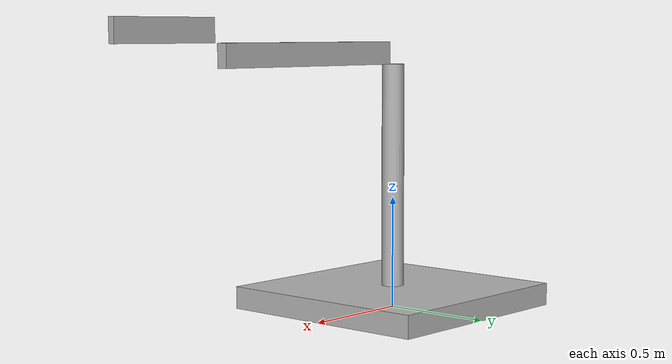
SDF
<?xml version="1.0" ?>
<sdf version="1.5">
  <model name="simple_arm">
    <link name="arm_base">
      <visual name="arm_base_geom_visual">
        <pose>0 0 0.05 0 0 0</pose>
        <geometry>
          <box>
            <size>1.0 1.0 0.1</size>
          </box>
        </geometry>
      </visual>
      <visual name="arm_base_geom_arm_trunk_visual">
        <pose>0 0 0.6 0 0 0</pose>
        <geometry>
          <cylinder>
            <radius>0.05</radius>
            <length>1.0</length>
          </cylinder>
        </geometry>
      </visual>
    </link>
    <link name="arm_shoulder_pan">
      <pose>0 0 1.1 0 0 0</pose>
      <inertial>
        <pose>0.045455 0 0 0 0 0</pose>
        <inertia>
          <ixx>0.011</ixx>
          <ixy>0</ixy>
          <ixz>0</ixz>
          <iyy>0.0225</iyy>
          <iyz>0</iyz>
          <izz>0.0135</izz>
        </inertia>
        <mass>1.1</mass>
      </inertial>
      <visual name="arm_shoulder_pan_geom_arm_shoulder_visual">
        <pose>0.55 0 0.05 0 0 0</pose>
        <geometry>
          <box>
            <size>1.0 0.05 0.1</size>
          </box>
        </geometry>
      </visual>
    </link>
    <link name="arm_elbow_pan">
      <pose>1.05 0 1.1 0 0 0</pose>
      <inertial>
        <pose>0.0875 0 0.083333 0 0 0</pose>
        <inertia>
          <ixx>0.031</ixx>
          <ixy>0</ixy>
          <ixz>0.005</ixz>
          <iyy>0.07275</iyy>
          <iyz>0</iyz>
          <izz>0.04475</izz>
        </inertia>
        <mass>1.2</mass>
      </inertial>
      <visual name="arm_elbow_pan_geom_arm_elbow_visual">
        <pose>0.3 0 0.15 0 0 0</pose>
        <geometry>
          <box>
            <size>0.5 0.03 0.1</size>
          </box>
        </geometry>
      </visual>
    </link>

    <joint name="arm_shoulder_pan_joint" type="revolute">
      <parent>arm_base</parent>
      <child>arm_shoulder_pan</child>
      <axis>
        <dynamics>
          <damping>1.000000</damping>
          <friction>0.000000</friction>
        </dynamics>
        <xyz>0 1 0</xyz>
        <use_parent_model_frame>true</use_parent_model_frame>
      </axis>
    </joint>
    <joint name="arm_elbow_pan_joint" type="revolute">
      <parent>arm_shoulder_pan</parent>
      <child>arm_elbow_pan</child>
      <axis>
        <dynamics>
          <damping>1.000000</damping>
          <friction>0.000000</friction>
        </dynamics>
        <xyz>0 1 0</xyz>
        <use_parent_model_frame>true</use_parent_model_frame>
      </axis>
    </joint>
    <joint name="arm_base_joint" type="fixed">
      <parent>world</parent>
      <child>arm_base</child>
      <axis>
        <limit>
          <lower>0</lower>
          <upper>0</upper>
        </limit>
        <xyz>0 0 1</xyz>
      </axis>
    </joint>
  </model>
</sdf>
